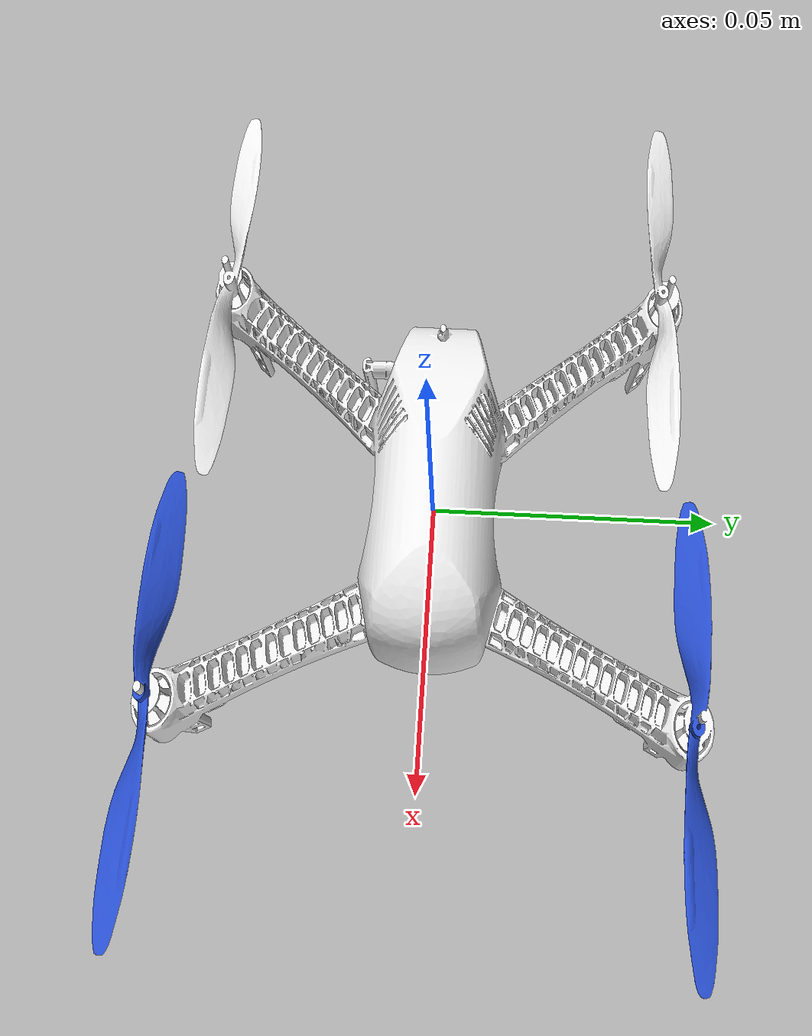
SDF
<?xml version="1.0"?>
<sdf version='1.6'>
  <model name='iris_scaled'>
    <link name='base_link'>
      <pose>0 0 0 0 0 0</pose>
      <inertial>
        <pose>0 0 0 0 0 0</pose>
        <mass>1.5</mass>
        <inertia>
          <ixx>0.029125</ixx>
          <ixy>0</ixy>
          <ixz>0</ixz>
          <iyy>0.029125</iyy>
          <iyz>0</iyz>
          <izz>0.055225</izz>
        </inertia>
      </inertial>
      <collision name='base_link_inertia_collision'>
        <pose>0 0 0 0 0 0</pose>
        <geometry>
          <box>
            <size>0.47 0.47 0.11</size>
          </box>
        </geometry>
        <surface>
          <contact>
            <ode>
              <min_depth>0.001</min_depth>
              <max_vel>0</max_vel>
            </ode>
          </contact>
          <friction>
            <ode/>
          </friction>
        </surface>
      </collision>
      <visual name='base_link_inertia_visual'>
        <pose>0 0 0 0 0 0</pose>
        <geometry>
          <mesh>
            <scale>1 1 1</scale>
            <uri>model://iris_scaled/meshes/iris.stl</uri>
          </mesh>
        </geometry>
        <material>
          <script>
            <name>Gazebo/White</name>
            <uri>file://media/materials/scripts/gazebo.material</uri>
          </script>
        </material>
      </visual>
      <gravity>1</gravity>
      <velocity_decay/>
    </link>
    <link name='/imu_link'>
      <pose>0 0 0 0 0 0</pose>
      <inertial>
        <pose>0 0 0 0 0 0</pose>
        <mass>0.015</mass>
        <inertia>
          <ixx>1e-05</ixx>
          <ixy>0</ixy>
          <ixz>0</ixz>
          <iyy>1e-05</iyy>
          <iyz>0</iyz>
          <izz>1e-05</izz>
        </inertia>
      </inertial>
    </link>
    <joint name='/imu_joint' type='revolute'>
      <child>/imu_link</child>
      <parent>base_link</parent>
      <axis>
        <xyz>1 0 0</xyz>
        <limit>
          <lower>0</lower>
          <upper>0</upper>
          <effort>0</effort>
          <velocity>0</velocity>
        </limit>
        <dynamics>
          <spring_reference>0</spring_reference>
          <spring_stiffness>0</spring_stiffness>
        </dynamics>
        <use_parent_model_frame>1</use_parent_model_frame>
      </axis>
    </joint>
    <link name='rotor_0'>
      <pose>0.039 -0.044 0.01 0 0 0</pose>
      <inertial>
        <pose>0 0 0 0 0 0</pose>
        <mass>0.005</mass>
        <inertia>
          <ixx>9.75e-07</ixx>
          <ixy>0</ixy>
          <ixz>0</ixz>
          <iyy>0.000273104</iyy>
          <iyz>0</iyz>
          <izz>0.000274004</izz>
        </inertia>
      </inertial>
      <collision name='rotor_0_collision'>
        <pose>0 0 0 0 0 0</pose>
        <geometry>
          <cylinder>
            <length>0.005</length>
            <radius>0.128</radius>
          </cylinder>
        </geometry>
        <surface>
          <contact>
            <ode/>
          </contact>
          <friction>
            <ode/>
          </friction>
        </surface>
      </collision>
      <visual name='rotor_0_visual'>
        <pose>0 0 0 0 0 0</pose>
        <geometry>
          <mesh>
            <scale>1 1 1</scale>
            <uri>model://iris_scaled/meshes/iris_prop_ccw.dae</uri>
          </mesh>
        </geometry>
        <material>
          <script>
            <name>Gazebo/Blue</name>
            <uri>file://media/materials/scripts/gazebo.material</uri>
          </script>
        </material>
      </visual>
      <gravity>1</gravity>
      <velocity_decay/>
    </link>
    <joint name='rotor_0_joint' type='revolute'>
      <child>rotor_0</child>
      <parent>base_link</parent>
      <axis>
        <xyz>0 0 1</xyz>
        <limit>
          <lower>-1e+16</lower>
          <upper>1e+16</upper>
        </limit>
        <dynamics>
          <spring_reference>0</spring_reference>
          <spring_stiffness>0</spring_stiffness>
        </dynamics>
        <use_parent_model_frame>1</use_parent_model_frame>
      </axis>
    </joint>
    <link name='rotor_1'>
      <pose>-0.039 0.04 0.01 0 0 0</pose>
      <inertial>
        <pose>0 0 0 0 0 0</pose>
        <mass>0.005</mass>
        <inertia>
          <ixx>9.75e-07</ixx>
          <ixy>0</ixy>
          <ixz>0</ixz>
          <iyy>0.000273104</iyy>
          <iyz>0</iyz>
          <izz>0.000274004</izz>
        </inertia>
      </inertial>
      <collision name='rotor_1_collision'>
        <pose>0 0 0 0 0 0</pose>
        <geometry>
          <cylinder>
            <length>0.005</length>
            <radius>0.128</radius>
          </cylinder>
        </geometry>
        <surface>
          <contact>
            <ode/>
          </contact>
          <friction>
            <ode/>
          </friction>
        </surface>
      </collision>
      <visual name='rotor_1_visual'>
        <pose>0 0 0 0 0 0</pose>
        <geometry>
          <mesh>
            <scale>1 1 1</scale>
            <uri>model://iris_scaled/meshes/iris_prop_ccw.dae</uri>
          </mesh>
        </geometry>
        <material>
          <script>
            <name>Gazebo/White</name>
            <uri>file://media/materials/scripts/gazebo.material</uri>
          </script>
        </material>
      </visual>
      <gravity>1</gravity>
      <velocity_decay/>
    </link>
    <joint name='rotor_1_joint' type='revolute'>
      <child>rotor_1</child>
      <parent>base_link</parent>
      <axis>
        <xyz>0 0 1</xyz>
        <limit>
          <lower>-1e+16</lower>
          <upper>1e+16</upper>
        </limit>
        <dynamics>
          <spring_reference>0</spring_reference>
          <spring_stiffness>0</spring_stiffness>
        </dynamics>
        <use_parent_model_frame>1</use_parent_model_frame>
      </axis>
    </joint>
    <link name='rotor_2'>
      <pose>0.039 0.044 0.01 0 0 0</pose>
      <inertial>
        <pose>0 0 0 0 0 0</pose>
        <mass>0.005</mass>
        <inertia>
          <ixx>9.75e-07</ixx>
          <ixy>0</ixy>
          <ixz>0</ixz>
          <iyy>0.000273104</iyy>
          <iyz>0</iyz>
          <izz>0.000274004</izz>
        </inertia>
      </inertial>
      <collision name='rotor_2_collision'>
        <pose>0 0 0 0 0 0</pose>
        <geometry>
          <cylinder>
            <length>0.005</length>
            <radius>0.128</radius>
          </cylinder>
        </geometry>
        <surface>
          <contact>
            <ode/>
          </contact>
          <friction>
            <ode/>
          </friction>
        </surface>
      </collision>
      <visual name='rotor_2_visual'>
        <pose>0 0 0 0 0 0</pose>
        <geometry>
          <mesh>
            <scale>1 1 1</scale>
            <uri>model://iris_scaled/meshes/iris_prop_cw.dae</uri>
          </mesh>
        </geometry>
        <material>
          <script>
            <name>Gazebo/Blue</name>
            <uri>file://media/materials/scripts/gazebo.material</uri>
          </script>
        </material>
      </visual>
      <gravity>1</gravity>
      <velocity_decay/>
    </link>
    <joint name='rotor_2_joint' type='revolute'>
      <child>rotor_2</child>
      <parent>base_link</parent>
      <axis>
        <xyz>0 0 1</xyz>
        <limit>
          <lower>-1e+16</lower>
          <upper>1e+16</upper>
        </limit>
        <dynamics>
          <spring_reference>0</spring_reference>
          <spring_stiffness>0</spring_stiffness>
        </dynamics>
        <use_parent_model_frame>1</use_parent_model_frame>
      </axis>
    </joint>
    <link name='rotor_3'>
      <pose>-0.039 -0.04 0.01 0 0 0</pose>
      <inertial>
        <pose>0 0 0 0 0 0</pose>
        <mass>0.005</mass>
        <inertia>
          <ixx>9.75e-07</ixx>
          <ixy>0</ixy>
          <ixz>0</ixz>
          <iyy>0.000273104</iyy>
          <iyz>0</iyz>
          <izz>0.000274004</izz>
        </inertia>
      </inertial>
      <collision name='rotor_3_collision'>
        <pose>0 0 0 0 0 0</pose>
        <geometry>
          <cylinder>
            <length>0.005</length>
            <radius>0.128</radius>
          </cylinder>
        </geometry>
        <surface>
          <contact>
            <ode/>
          </contact>
          <friction>
            <ode/>
          </friction>
        </surface>
      </collision>
      <visual name='rotor_3_visual'>
        <pose>0 0 0 0 0 0</pose>
        <geometry>
          <mesh>
            <scale>1 1 1</scale>
            <uri>model://iris_scaled/meshes/iris_prop_cw.dae</uri>
          </mesh>
        </geometry>
        <material>
          <script>
            <name>Gazebo/White</name>
            <uri>file://media/materials/scripts/gazebo.material</uri>
          </script>
        </material>
      </visual>
      <gravity>1</gravity>
      <velocity_decay/>
    </link>
    <joint name='rotor_3_joint' type='revolute'>
      <child>rotor_3</child>
      <parent>base_link</parent>
      <axis>
        <xyz>0 0 1</xyz>
        <limit>
          <lower>-1e+16</lower>
          <upper>1e+16</upper>
        </limit>
        <dynamics>
          <spring_reference>0</spring_reference>
          <spring_stiffness>0</spring_stiffness>
        </dynamics>
        <use_parent_model_frame>1</use_parent_model_frame>
      </axis>
    </joint>
    <plugin name="iris_virtual_pose" filename="libgazebo_model_pose.so">
      <topic>/qualisys/hb1/pose</topic>
    </plugin>
  </model>
</sdf>
